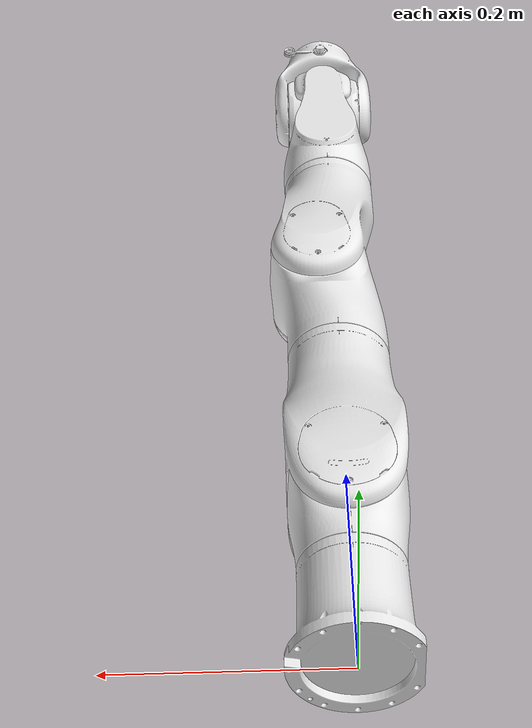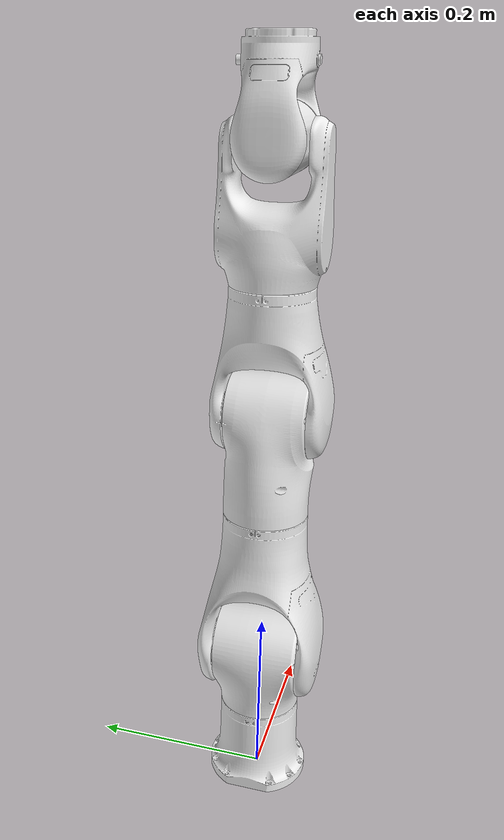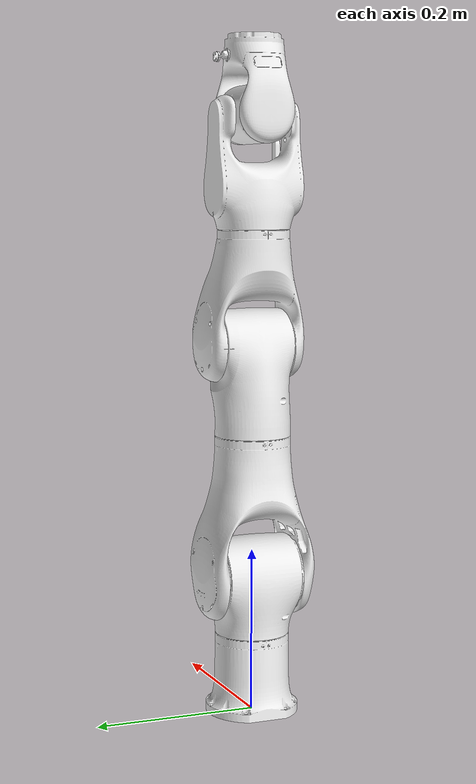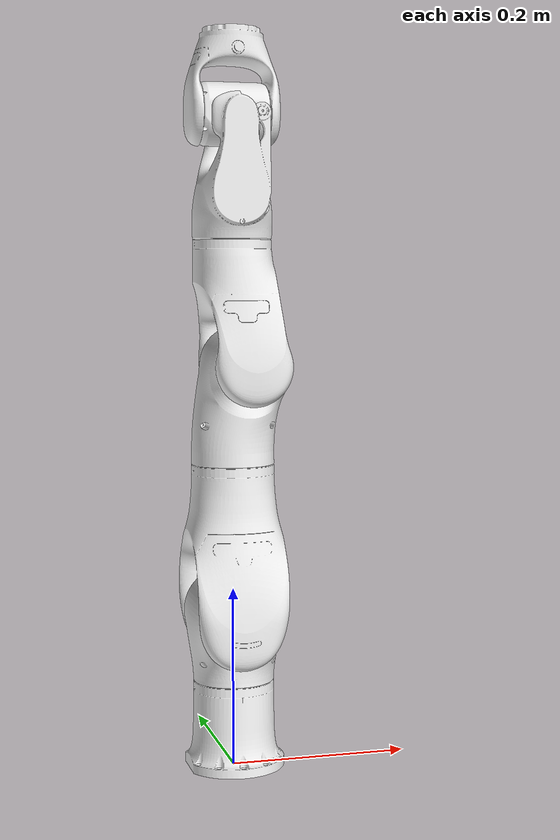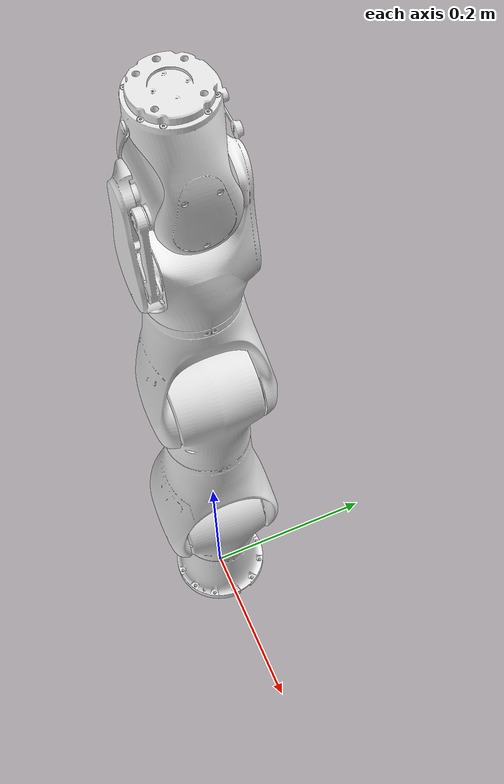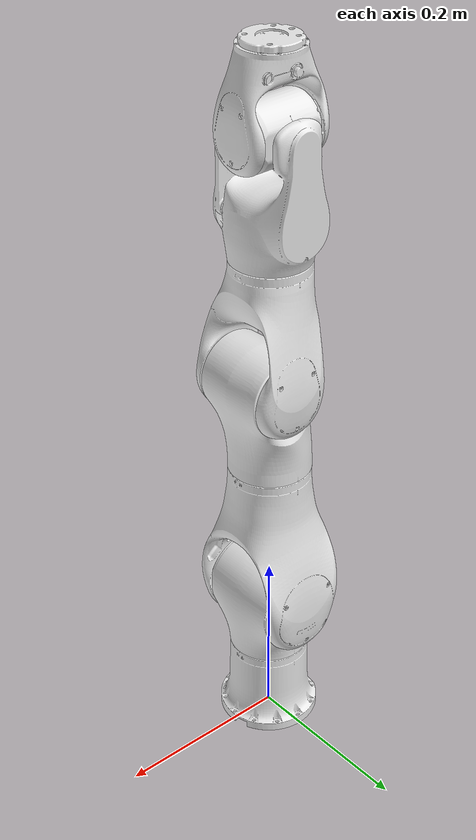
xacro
<?xml version='1.0' encoding='UTF-8'?>
<!-- xMate AR3R collaborative ARC 7-axis (3 kg). Source: 仓三 AR3-3_07R-W4C5C5_description -->
<!-- Joints renamed to joint1..joint7 for ros2_control / MoveIt compatibility (same as AR5R). -->
<robot xmlns:xacro="http://www.ros.org/wiki/xacro" name="AR3-3_07R-W4C5C5">

  <xacro:include filename="$(find rokae_description)/urdf/materials.xacro"/>

  <link name="world"/>
  <joint name="fixed" type="fixed">
    <parent link="world"/>
    <child link="AR3-3_07R-W4C5C5_base"/>
  </joint>

  <link name="AR3-3_07R-W4C5C5_base">
    <visual>
      <geometry>
        <mesh filename="package://rokae_description/meshes/AR3-3_07R-W4C5C5/visual/AR3-3_07R-W4C5C5_base.stl" scale="0.001 0.001 0.001"/>
      </geometry>
      <origin rpy="0 0 0" xyz="0.0 0.0 0.0"/>
      <material name="white"/>
    </visual>
    <collision>
      <geometry>
        <mesh filename="package://rokae_description/meshes/AR3-3_07R-W4C5C5/collision/AR3-3_07R-W4C5C5_base.stl" scale="0.001 0.001 0.001"/>
      </geometry>
      <origin rpy="0 0 0" xyz="0.0 0.0 0.0"/>
    </collision>
  </link>

  <joint name="joint1" type="revolute">
    <parent link="AR3-3_07R-W4C5C5_base"/>
    <child link="AR3-3_07R-W4C5C5_link1"/>
    <limit effort="66" lower="-3.1067" upper="3.1067" velocity="3.05432619"/>
    <axis xyz="0 0 1"/>
    <origin rpy="0 0 0" xyz="0.0 0.0 0.0"/>
  </joint>
  <transmission name="tran1">
    <type>transmission_interface/SimpleTransmission</type>
    <joint name="joint1">
      <hardwareInterface>EffortJointInterface</hardwareInterface>
    </joint>
    <actuator name="motor1">
      <hardwareInterface>EffortJointInterface</hardwareInterface>
      <mechanicalReduction>1</mechanicalReduction>
    </actuator>
  </transmission>

  <link name="AR3-3_07R-W4C5C5_link1">
    <visual>
      <geometry>
        <mesh filename="package://rokae_description/meshes/AR3-3_07R-W4C5C5/visual/AR3-3_07R-W4C5C5_link1.stl" scale="0.001 0.001 0.001"/>
      </geometry>
      <origin rpy="0 0 0" xyz="0 0 0"/>
      <material name="white"/>
    </visual>
    <inertial>
      <mass value="1.777000"/>
      <inertia ixx="0.00308384" ixy="-0.00000199" ixz="-0.00000297" iyy="0.00259051" iyz="0.00002823" izz="0.00249381"/>
      <origin rpy="0 0 0" xyz="0.000174 0.001385 0.161266"/>
    </inertial>
    <collision>
      <geometry>
        <mesh filename="package://rokae_description/meshes/AR3-3_07R-W4C5C5/collision/AR3-3_07R-W4C5C5_link1.stl" scale="0.001 0.001 0.001"/>
      </geometry>
      <origin rpy="0 0 0" xyz="0 0 0"/>
    </collision>
  </link>

  <!-- 仓三: joint2 [0, 0, 170] mm -->
  <joint name="joint2" type="revolute">
    <parent link="AR3-3_07R-W4C5C5_link1"/>
    <child link="AR3-3_07R-W4C5C5_link2"/>
    <limit effort="66" lower="-2.0944" upper="2.0944" velocity="3.05432619"/>
    <axis xyz="0 1 0"/>
    <origin rpy="0 0 0" xyz="0.0 0.0 0.17"/>
  </joint>
  <transmission name="tran2">
    <type>transmission_interface/SimpleTransmission</type>
    <joint name="joint2">
      <hardwareInterface>EffortJointInterface</hardwareInterface>
    </joint>
    <actuator name="motor2">
      <hardwareInterface>EffortJointInterface</hardwareInterface>
      <mechanicalReduction>1</mechanicalReduction>
    </actuator>
  </transmission>

  <link name="AR3-3_07R-W4C5C5_link2">
    <visual>
      <geometry>
        <mesh filename="package://rokae_description/meshes/AR3-3_07R-W4C5C5/visual/AR3-3_07R-W4C5C5_link2.stl" scale="0.001 0.001 0.001"/>
      </geometry>
      <origin rpy="0 0 0" xyz="0 0 0.0"/>
      <material name="white"/>
    </visual>
    <inertial>
      <mass value="2.154000"/>
      <inertia ixx="0.00840938" ixy="-0.00000483" ixz="-0.00000090" iyy="0.00721743" iyz="-0.00046270" izz="0.00393417"/>
      <origin rpy="0 0 0" xyz="-5.5e-05 0.001608 0.100675"/>
    </inertial>
    <collision>
      <geometry>
        <mesh filename="package://rokae_description/meshes/AR3-3_07R-W4C5C5/collision/AR3-3_07R-W4C5C5_link2.stl" scale="0.001 0.001 0.001"/>
      </geometry>
      <origin rpy="0 0 0" xyz="0 0 0.0"/>
    </collision>
  </link>

  <!-- 仓三: joint3 [0, 0, 281] mm -->
  <joint name="joint3" type="revolute">
    <parent link="AR3-3_07R-W4C5C5_link2"/>
    <child link="AR3-3_07R-W4C5C5_link3"/>
    <limit effort="36" lower="-3.1067" upper="3.1067" velocity="4.71238898"/>
    <axis xyz="0 0 1"/>
    <origin rpy="0 0 0" xyz="0.0 0.0 0.281"/>
  </joint>
  <transmission name="tran3">
    <type>transmission_interface/SimpleTransmission</type>
    <joint name="joint3">
      <hardwareInterface>EffortJointInterface</hardwareInterface>
    </joint>
    <actuator name="motor3">
      <hardwareInterface>EffortJointInterface</hardwareInterface>
      <mechanicalReduction>1</mechanicalReduction>
    </actuator>
  </transmission>

  <link name="AR3-3_07R-W4C5C5_link3">
    <visual>
      <geometry>
        <mesh filename="package://rokae_description/meshes/AR3-3_07R-W4C5C5/visual/AR3-3_07R-W4C5C5_link3.stl" scale="0.001 0.001 0.001"/>
      </geometry>
      <origin rpy="0 0 0" xyz="0 0 0"/>
      <material name="white"/>
    </visual>
    <inertial>
      <mass value="1.532000"/>
      <inertia ixx="0.00337551" ixy="0.00000654" ixz="0.00029310" iyy="0.00322803" iyz="0.00005478" izz="0.00192206"/>
      <origin rpy="0 0 0" xyz="0.011968 0.003804 -0.016155"/>
    </inertial>
    <collision>
      <geometry>
        <mesh filename="package://rokae_description/meshes/AR3-3_07R-W4C5C5/collision/AR3-3_07R-W4C5C5_link3.stl" scale="0.001 0.001 0.001"/>
      </geometry>
      <origin rpy="0 0 0" xyz="0 0 0"/>
    </collision>
  </link>

  <!-- 仓三: joint4 [15, 0, 0] mm -->
  <joint name="joint4" type="revolute">
    <parent link="AR3-3_07R-W4C5C5_link3"/>
    <child link="AR3-3_07R-W4C5C5_link4"/>
    <limit effort="36" lower="-1.0472" upper="2.5307" velocity="4.71238898"/>
    <axis xyz="0 1 0"/>
    <origin rpy="0 0 0" xyz="0.015 0.0 0.0"/>
  </joint>
  <transmission name="tran4">
    <type>transmission_interface/SimpleTransmission</type>
    <joint name="joint4">
      <hardwareInterface>EffortJointInterface</hardwareInterface>
    </joint>
    <actuator name="motor4">
      <hardwareInterface>EffortJointInterface</hardwareInterface>
      <mechanicalReduction>1</mechanicalReduction>
    </actuator>
  </transmission>

  <link name="AR3-3_07R-W4C5C5_link4">
    <visual>
      <geometry>
        <mesh filename="package://rokae_description/meshes/AR3-3_07R-W4C5C5/visual/AR3-3_07R-W4C5C5_link4.stl" scale="0.001 0.001 0.001"/>
      </geometry>
      <origin rpy="0 0 0" xyz="0.0 0.0 0.0"/>
      <material name="white"/>
    </visual>
    <inertial>
      <mass value="1.158000"/>
      <inertia ixx="0.00359336" ixy="0.00001078" ixz="-0.00021513" iyy="0.00278303" iyz="-0.00012278" izz="0.00187873"/>
      <origin rpy="0 0 0" xyz="-0.010683 0.000872 0.080923"/>
    </inertial>
    <collision>
      <geometry>
        <mesh filename="package://rokae_description/meshes/AR3-3_07R-W4C5C5/collision/AR3-3_07R-W4C5C5_link4.stl" scale="0.001 0.001 0.001"/>
      </geometry>
      <origin rpy="0 0 0" xyz="0.0 0.0 0.0"/>
    </collision>
  </link>

  <!-- 仓三: joint5 [-15, 0, 276] mm -->
  <joint name="joint5" type="revolute">
    <parent link="AR3-3_07R-W4C5C5_link4"/>
    <child link="AR3-3_07R-W4C5C5_link5"/>
    <limit effort="11" lower="-3.1067" upper="3.1067" velocity="4.18879020"/>
    <axis xyz="0 0 1"/>
    <origin rpy="0 0 0" xyz="-0.015 0.0 0.276"/>
  </joint>
  <transmission name="tran5">
    <type>transmission_interface/SimpleTransmission</type>
    <joint name="joint5">
      <hardwareInterface>EffortJointInterface</hardwareInterface>
    </joint>
    <actuator name="motor5">
      <hardwareInterface>EffortJointInterface</hardwareInterface>
      <mechanicalReduction>1</mechanicalReduction>
    </actuator>
  </transmission>

  <link name="AR3-3_07R-W4C5C5_link5">
    <visual>
      <geometry>
        <mesh filename="package://rokae_description/meshes/AR3-3_07R-W4C5C5/visual/AR3-3_07R-W4C5C5_link5.stl" scale="0.001 0.001 0.001"/>
      </geometry>
      <origin rpy="0 0 0" xyz="0 0 0"/>
      <material name="white"/>
    </visual>
    <inertial>
      <mass value="1.095000"/>
      <inertia ixx="0.00220419" ixy="-0.00003851" ixz="0.00003682" iyy="0.00186719" iyz="-0.00008316" izz="0.00126211"/>
      <origin rpy="0 0 0" xyz="0.000958 -0.006353 -0.08194"/>
    </inertial>
    <collision>
      <geometry>
        <mesh filename="package://rokae_description/meshes/AR3-3_07R-W4C5C5/collision/AR3-3_07R-W4C5C5_link5.stl" scale="0.001 0.001 0.001"/>
      </geometry>
      <origin rpy="0 0 0" xyz="0 0 0"/>
    </collision>
  </link>

  <joint name="joint6" type="revolute">
    <parent link="AR3-3_07R-W4C5C5_link5"/>
    <child link="AR3-3_07R-W4C5C5_link6"/>
    <limit effort="11" lower="-1.0472" upper="1.0472" velocity="4.18879020"/>
    <axis xyz="0 1 0"/>
    <origin rpy="0.0 0.0 0" xyz="0.0 0.0 0.0"/>
  </joint>
  <transmission name="tran6">
    <type>transmission_interface/SimpleTransmission</type>
    <joint name="joint6">
      <hardwareInterface>EffortJointInterface</hardwareInterface>
    </joint>
    <actuator name="motor6">
      <hardwareInterface>EffortJointInterface</hardwareInterface>
      <mechanicalReduction>1</mechanicalReduction>
    </actuator>
  </transmission>

  <link name="AR3-3_07R-W4C5C5_link6">
    <visual>
      <geometry>
        <mesh filename="package://rokae_description/meshes/AR3-3_07R-W4C5C5/visual/AR3-3_07R-W4C5C5_link6.stl" scale="0.001 0.001 0.001"/>
      </geometry>
      <origin rpy="0 0 0" xyz="0 0 0"/>
      <material name="white"/>
    </visual>
    <inertial>
      <mass value="0.643000"/>
      <inertia ixx="0.00035156" ixy="0.00000129" ixz="-0.00000253" iyy="0.00043721" iyz="-0.00000074" izz="0.00045593"/>
      <origin rpy="0 0 0" xyz="0.006186 -0.000868 0.000133"/>
    </inertial>
    <collision>
      <geometry>
        <mesh filename="package://rokae_description/meshes/AR3-3_07R-W4C5C5/collision/AR3-3_07R-W4C5C5_link6.stl" scale="0.001 0.001 0.001"/>
      </geometry>
      <origin rpy="0 0 0" xyz="0 0 0"/>
    </collision>
  </link>

  <joint name="joint7" type="revolute">
    <parent link="AR3-3_07R-W4C5C5_link6"/>
    <child link="AR3-3_07R-W4C5C5_link7"/>
    <limit effort="11" lower="-1.5708" upper="1.5708" velocity="4.18879020"/>
    <axis xyz="1 0 0"/>
    <origin rpy="0.0 0.0 0" xyz="0.0 0.0 0.0"/>
  </joint>
  <transmission name="tran7">
    <type>transmission_interface/SimpleTransmission</type>
    <joint name="joint7">
      <hardwareInterface>EffortJointInterface</hardwareInterface>
    </joint>
    <actuator name="motor7">
      <hardwareInterface>EffortJointInterface</hardwareInterface>
      <mechanicalReduction>1</mechanicalReduction>
    </actuator>
  </transmission>

  <link name="AR3-3_07R-W4C5C5_link7">
    <visual>
      <geometry>
        <mesh filename="package://rokae_description/meshes/AR3-3_07R-W4C5C5/visual/AR3-3_07R-W4C5C5_link7.stl" scale="0.001 0.001 0.001"/>
      </geometry>
      <origin rpy="0 0 0" xyz="0.0 0.0 0.0"/>
      <material name="white"/>
    </visual>
    <inertial>
      <mass value="0.424000"/>
      <inertia ixx="0.00062956" ixy="0.00000084" ixz="-0.00001803" iyy="0.00094422" iyz="-0.00000159" izz="0.00060191"/>
      <origin rpy="0 0 0" xyz="-0.000214 -6.9e-05 0.048235"/>
    </inertial>
    <collision>
      <geometry>
        <mesh filename="package://rokae_description/meshes/AR3-3_07R-W4C5C5/collision/AR3-3_07R-W4C5C5_link7.stl" scale="0.001 0.001 0.001"/>
      </geometry>
      <origin rpy="0 0 0" xyz="0.0 0.0 0.0"/>
    </collision>
  </link>

  <!-- 仓三 flan_link → tcp (0.093 m), same role as AR5R_tcp -->
  <link name="AR3-3_07R-W4C5C5_tcp">
    <inertial>
      <mass value="0.0"/>
      <inertia ixx="1e-6" ixy="0" ixz="0" iyy="1e-6" iyz="0" izz="1e-6"/>
    </inertial>
  </link>
  <joint name="AR3-3_07R-W4C5C5_tcp_joint" type="fixed">
    <parent link="AR3-3_07R-W4C5C5_link7"/>
    <child link="AR3-3_07R-W4C5C5_tcp"/>
    <origin rpy="0 0 0" xyz="0.0 0.0 0.093"/>
  </joint>

</robot>
